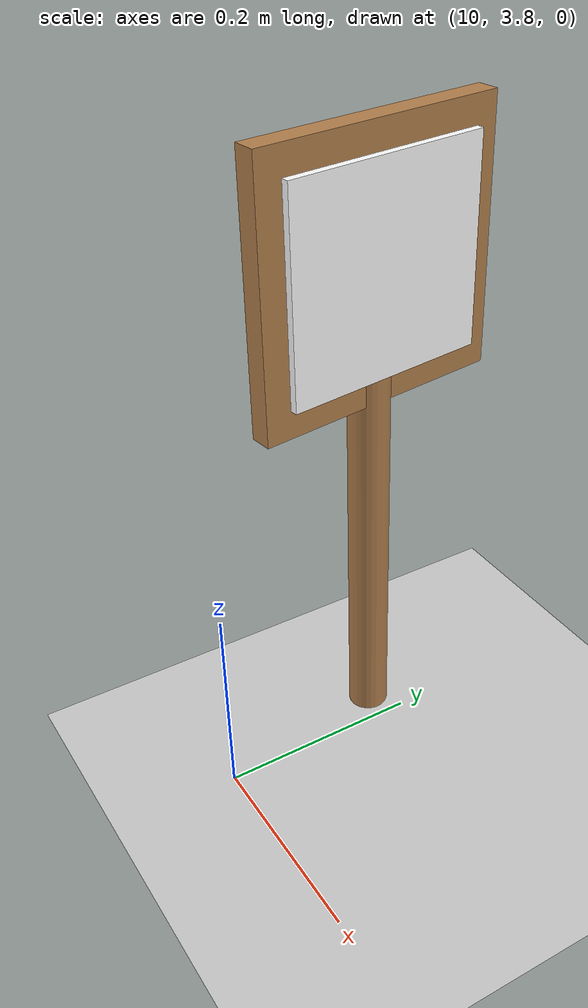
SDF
<sdf version="1.6">
 <world name="default">
  <model name="ground_plane">
   <static>1</static>
   <link name="link">
    <collision name="collision">
     <geometry><plane><normal>0 0 1</normal><size>100 100</size></plane></geometry>
     <surface>
      <contact><collide_bitmask>65535</collide_bitmask></contact>
      <friction><ode><mu>100</mu><mu2>50</mu2></ode></friction>
     </surface>
    </collision>
    <visual name="visual">
     <cast_shadows>0</cast_shadows>
     <geometry><plane><normal>0 0 1</normal><size>100 100</size></plane></geometry>
     <material>
      <script><uri>file://media/materials/scripts/gazebo.material</uri><name>Gazebo/Grey</name></script>
     </material>
    </visual>
   </link>
  </model>
  <model name="aruco_wood_thin_clone_1">
   <link name="link_0">
    <inertial>
     <mass>1</mass>
     <inertia><ixx>0.145833</ixx><ixy>0</ixy><ixz>0</ixz><iyy>0.145833</iyy><iyz>0</iyz><izz>0.125</izz></inertia>
    </inertial>
    <pose>-0.017932 0.660168 -0.097628 0 -0 0</pose>
    <visual name="visual">
     <geometry><cylinder><radius>0.02</radius><length>0.4</length></cylinder></geometry>
     <material>
      <lighting>1</lighting>
      <script><uri>file://media/materials/scripts/gazebo.material</uri><name>Gazebo/Wood</name></script>
      <shader type="vertex"><normal_map>__default__</normal_map></shader>
      <ambient>0.3 0.3 0.3 1</ambient>
      <diffuse>0.7 0.7 0.7 1</diffuse>
      <specular>0.01 0.01 0.01 1</specular>
      <emissive>0 0 0 1</emissive>
     </material>
    </visual>
    <collision name="collision">
     <geometry><cylinder><radius>0.02</radius><length>0.4</length></cylinder></geometry>
     <surface>
      <friction>
       <ode><mu>1</mu><mu2>1</mu2><fdir1>0 0 0</fdir1><slip1>0</slip1><slip2>0</slip2></ode>
       <torsional>
        <coefficient>1</coefficient>
        <patch_radius>0</patch_radius>
        <surface_radius>0</surface_radius>
        <use_patch_radius>1</use_patch_radius>
        <ode><slip>0</slip></ode>
       </torsional>
      </friction>
      <bounce><restitution_coefficient>0</restitution_coefficient><threshold>1e+06</threshold></bounce>
      <contact>
       <collide_without_contact>0</collide_without_contact>
       <collide_without_contact_bitmask>1</collide_without_contact_bitmask>
       <collide_bitmask>1</collide_bitmask>
       <ode>
        <soft_cfm>0</soft_cfm>
        <soft_erp>0.2</soft_erp>
        <kp>1e+13</kp>
        <kd>1</kd>
        <max_vel>0.01</max_vel>
        <min_depth>0</min_depth>
       </ode>
       <bullet>
        <split_impulse>1</split_impulse>
        <split_impulse_penetration_threshold>-0.01</split_impulse_penetration_threshold>
        <soft_cfm>0</soft_cfm>
        <soft_erp>0.2</soft_erp>
        <kp>1e+13</kp>
        <kd>1</kd>
       </bullet>
      </contact>
     </surface>
    </collision>
   </link>
   <link name="link_1">
    <inertial>
     <mass>1.21407</mass>
     <inertia>
      <ixx>0.00864359</ixx>
      <ixy>0</ixy>
      <ixz>0</ixz>
      <iyy>0.00421539</iyy>
      <iyz>0</iyz>
      <izz>0.00446773</izz>
     </inertia>
    </inertial>
    <pose>-0.025899 0.66382 0.194379 0 -0 0</pose>
    <visual name="visual">
     <geometry><box><size>0.013978 0.209676 0.203642</size></box></geometry>
     <material>
      <script><uri>file://scripts</uri><uri>file://textures</uri><name>aruco/standard_opp</name></script>
      <emissive>0 0 0 1</emissive>
      <shader type="vertex"><normal_map>__default__</normal_map></shader>
      <ambient>1 1 1 1</ambient>
      <diffuse>1 1 1 1</diffuse>
      <specular>0 0 0 1</specular>
     </material>
    </visual>
    <collision name="collision">
     <geometry><box><size>0.013978 0.209676 0.203642</size></box></geometry>
     <surface>
      <friction>
       <ode><mu>1</mu><mu2>1</mu2><fdir1>0 0 0</fdir1><slip1>0</slip1><slip2>0</slip2></ode>
       <torsional>
        <coefficient>1</coefficient>
        <patch_radius>0</patch_radius>
        <surface_radius>0</surface_radius>
        <use_patch_radius>1</use_patch_radius>
        <ode><slip>0</slip></ode>
       </torsional>
      </friction>
      <bounce><restitution_coefficient>0</restitution_coefficient><threshold>1e+06</threshold></bounce>
      <contact>
       <collide_without_contact>0</collide_without_contact>
       <collide_without_contact_bitmask>1</collide_without_contact_bitmask>
       <collide_bitmask>1</collide_bitmask>
       <ode>
        <soft_cfm>0</soft_cfm>
        <soft_erp>0.2</soft_erp>
        <kp>1e+13</kp>
        <kd>1</kd>
        <max_vel>0.01</max_vel>
        <min_depth>0</min_depth>
       </ode>
       <bullet>
        <split_impulse>1</split_impulse>
        <split_impulse_penetration_threshold>-0.01</split_impulse_penetration_threshold>
        <soft_cfm>0</soft_cfm>
        <soft_erp>0.2</soft_erp>
        <kp>1e+13</kp>
        <kd>1</kd>
       </bullet>
      </contact>
     </surface>
    </collision>
   </link>
   <link name="link_1_clone">
    <inertial>
     <mass>0.519809</mass>
     <inertia>
      <ixx>0.00549167</ixx>
      <ixy>0</ixy>
      <ixz>0</ixz>
      <iyy>0.00278045</iyy>
      <iyz>0</iyz>
      <izz>0.00275135</izz>
     </inertia>
    </inertial>
    <pose>-0.015207 0.663184 0.195267 0 -0 0</pose>
    <visual name="visual">
     <geometry><box><size>0.021523 0.251103 0.252437</size></box></geometry>
     <material>
      <script><uri>file://scripts</uri><uri>file://textures</uri><name>Gazebo/Wood</name></script>
      <shader type="vertex"><normal_map>__default__</normal_map></shader>
      <ambient>1 1 1 1</ambient>
      <diffuse>1 1 1 1</diffuse>
      <specular>0 0 0 1</specular>
      <emissive>0 0 0 1</emissive>
     </material>
    </visual>
    <collision name="collision">
     <geometry><box><size>0.021523 0.251103 0.252437</size></box></geometry>
     <surface>
      <friction>
       <ode><mu>1</mu><mu2>1</mu2><fdir1>0 0 0</fdir1><slip1>0</slip1><slip2>0</slip2></ode>
       <torsional>
        <coefficient>1</coefficient>
        <patch_radius>0</patch_radius>
        <surface_radius>0</surface_radius>
        <use_patch_radius>1</use_patch_radius>
        <ode><slip>0</slip></ode>
       </torsional>
      </friction>
      <bounce><restitution_coefficient>0</restitution_coefficient><threshold>1e+06</threshold></bounce>
      <contact>
       <collide_without_contact>0</collide_without_contact>
       <collide_without_contact_bitmask>1</collide_without_contact_bitmask>
       <collide_bitmask>1</collide_bitmask>
       <ode>
        <soft_cfm>0</soft_cfm>
        <soft_erp>0.2</soft_erp>
        <kp>1e+13</kp>
        <kd>1</kd>
        <max_vel>0.01</max_vel>
        <min_depth>0</min_depth>
       </ode>
       <bullet>
        <split_impulse>1</split_impulse>
        <split_impulse_penetration_threshold>-0.01</split_impulse_penetration_threshold>
        <soft_cfm>0</soft_cfm>
        <soft_erp>0.2</soft_erp>
        <kp>1e+13</kp>
        <kd>1</kd>
       </bullet>
      </contact>
     </surface>
    </collision>
   </link>
   <link name="link_1_clone_0">
    <inertial>
     <mass>0.238009</mass>
     <inertia>
      <ixx>0.00161175</ixx>
      <ixy>0</ixy>
      <ixz>0</ixz>
      <iyy>0.000787067</iyy>
      <iyz>0</iyz>
      <izz>0.000832042</izz>
     </inertia>
    </inertial>
    <pose>-0.00403 0.665261 0.195247 0 -0 0</pose>
    <visual name="visual">
     <geometry><box><size>0.013624 0.204363 0.198738</size></box></geometry>
     <material>
      <script><uri>file://scripts</uri><uri>file://textures</uri><name>aruco/standard_opp</name></script>
      <emissive>0 0 0 1</emissive>
      <shader type="vertex"><normal_map>__default__</normal_map></shader>
      <ambient>1 1 1 1</ambient>
      <diffuse>1 1 1 1</diffuse>
      <specular>0 0 0 1</specular>
     </material>
    </visual>
    <collision name="collision">
     <geometry><box><size>0.013624 0.204363 0.198738</size></box></geometry>
     <surface>
      <friction>
       <ode><mu>1</mu><mu2>1</mu2><fdir1>0 0 0</fdir1><slip1>0</slip1><slip2>0</slip2></ode>
       <torsional>
        <coefficient>1</coefficient>
        <patch_radius>0</patch_radius>
        <surface_radius>0</surface_radius>
        <use_patch_radius>1</use_patch_radius>
        <ode><slip>0</slip></ode>
       </torsional>
      </friction>
      <bounce><restitution_coefficient>0</restitution_coefficient><threshold>1e+06</threshold></bounce>
      <contact>
       <collide_without_contact>0</collide_without_contact>
       <collide_without_contact_bitmask>1</collide_without_contact_bitmask>
       <collide_bitmask>1</collide_bitmask>
       <ode>
        <soft_cfm>0</soft_cfm>
        <soft_erp>0.2</soft_erp>
        <kp>1e+13</kp>
        <kd>1</kd>
        <max_vel>0.01</max_vel>
        <min_depth>0</min_depth>
       </ode>
       <bullet>
        <split_impulse>1</split_impulse>
        <split_impulse_penetration_threshold>-0.01</split_impulse_penetration_threshold>
        <soft_cfm>0</soft_cfm>
        <soft_erp>0.2</soft_erp>
        <kp>1e+13</kp>
        <kd>1</kd>
       </bullet>
      </contact>
     </surface>
    </collision>
   </link>
   <joint name="link_0_JOINT_0" type="fixed">
    <parent>link_0</parent>
    <child>link_1</child>
    <physics>
     <ode><limit><cfm>0</cfm><erp>0.2</erp></limit><suspension><cfm>0</cfm><erp>0.2</erp></suspension></ode>
    </physics>
   </joint>
   <joint name="link_1_JOINT_0_0" type="fixed">
    <parent>link_1</parent>
    <child>link_1_clone_0</child>
    <physics>
     <ode><limit><cfm>0</cfm><erp>0.2</erp></limit><suspension><cfm>0</cfm><erp>0.2</erp></suspension></ode>
    </physics>
   </joint>
   <joint name="link_1_JOINT_0" type="fixed">
    <parent>link_1</parent>
    <child>link_1_clone</child>
    <physics>
     <ode><limit><cfm>0</cfm><erp>0.2</erp></limit><suspension><cfm>0</cfm><erp>0.2</erp></suspension></ode>
    </physics>
   </joint>
   <static>0</static>
   <pose>10.0784 3.32512 0.297639 -1.6e-05 -3e-06 0.137601</pose>
  </model>
 </world>
</sdf>
